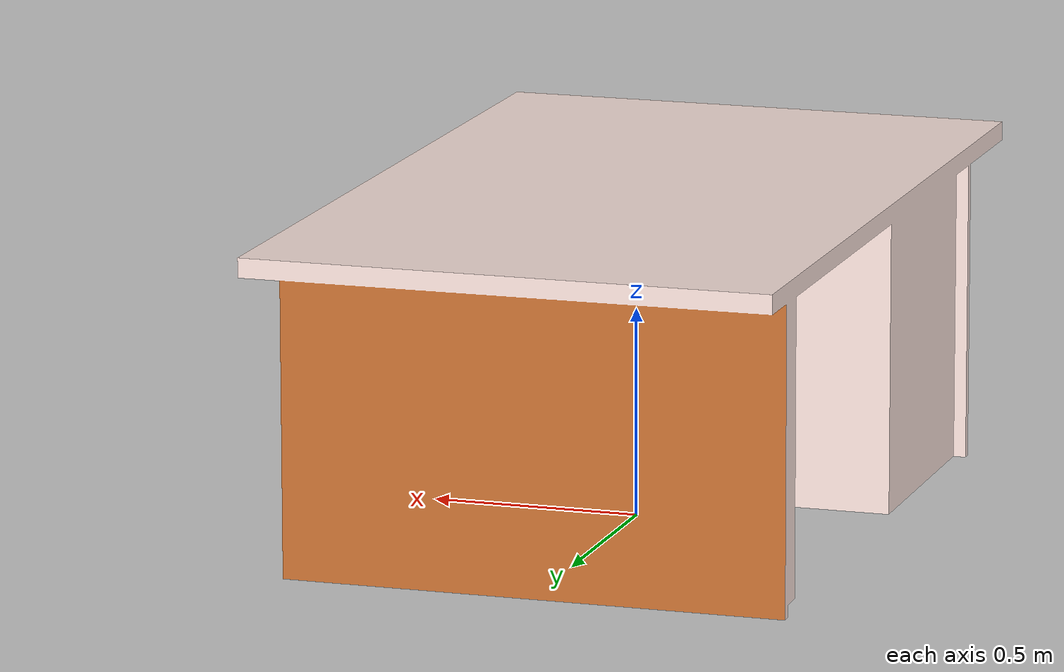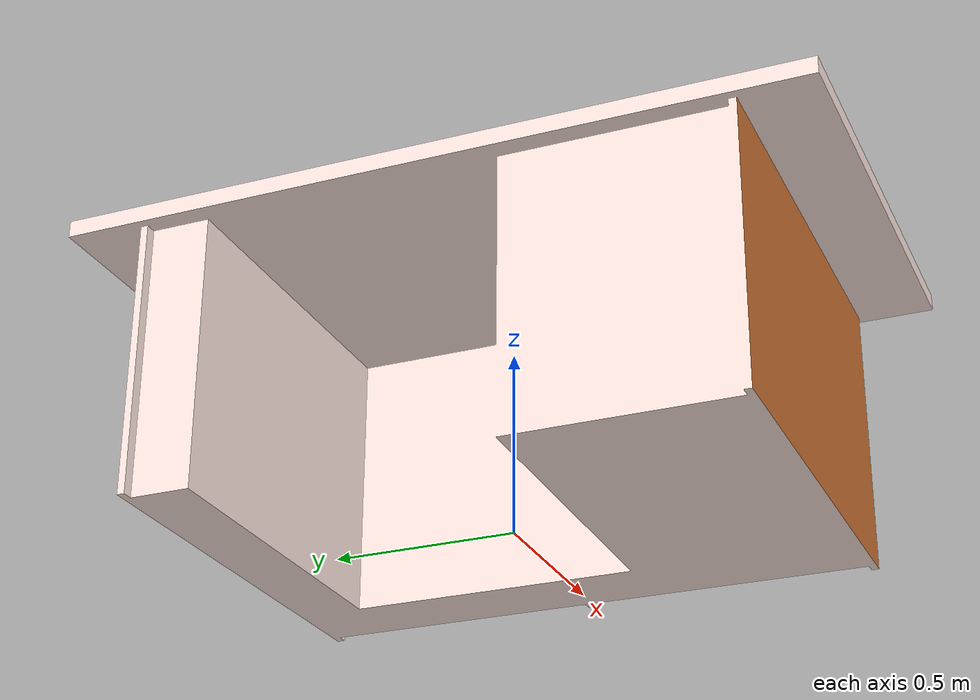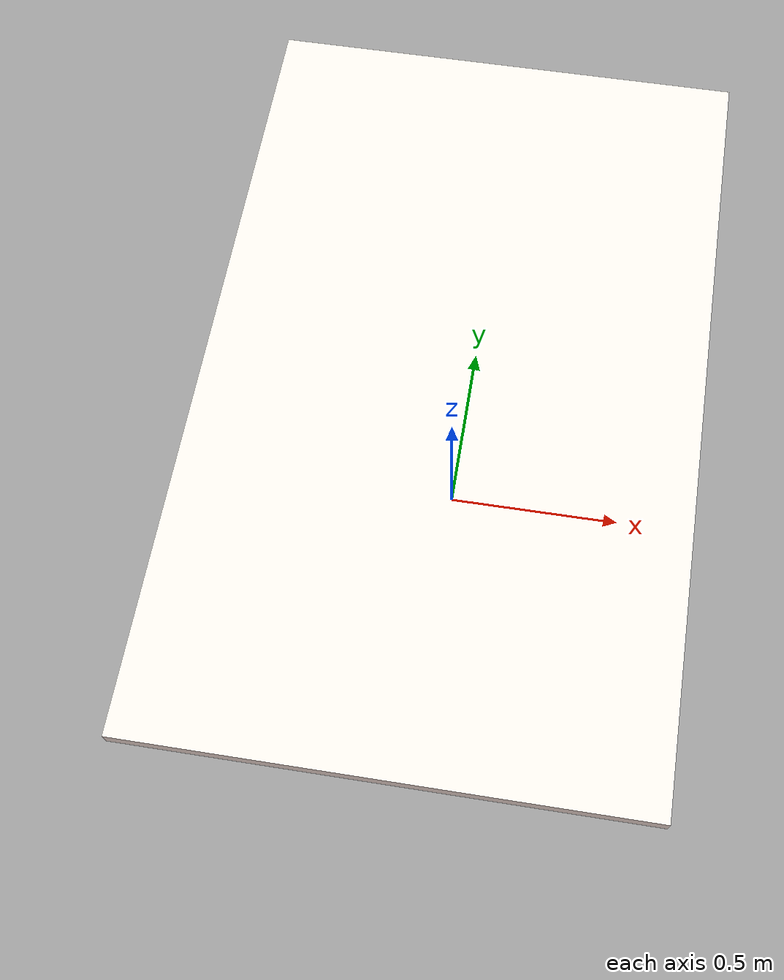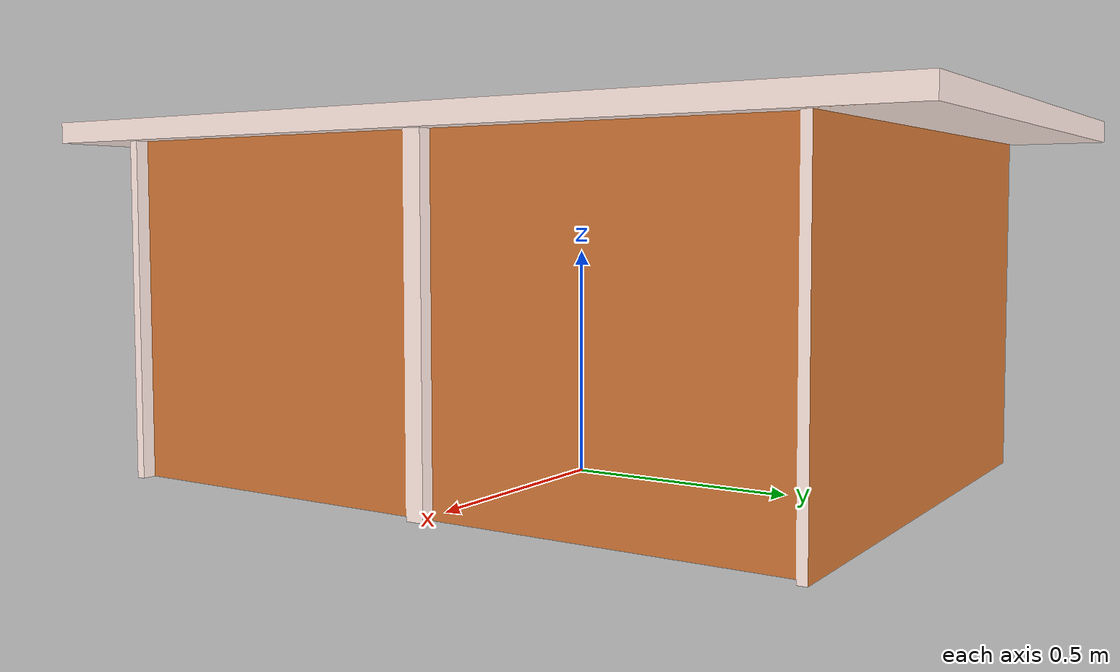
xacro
<?xml version="1.0"?>

<robot xmlns:xacro="http://www.ros.org/wiki/xacro" name="table">

<!-- Table to place UR5 on -->
    <link name='table_link'>
      <visual>
      <origin xyz="0 0.0 0.0" rpy="1.57 0 3.142"/>
        <geometry>
            <mesh filename="file://$(find unitartu_tech_gazebo)/models/Table/meshes/Table_new.dae" />
        </geometry>
      </visual>
      <collision>
      <origin xyz="0 0.0 0.0" rpy="1.57 0 3.142"/>
        <geometry>
            <mesh filename="file://$(find unitartu_tech_gazebo)/models/Table/meshes/Table_new.dae" />
        </geometry>
      </collision>
    </link>

</robot>
